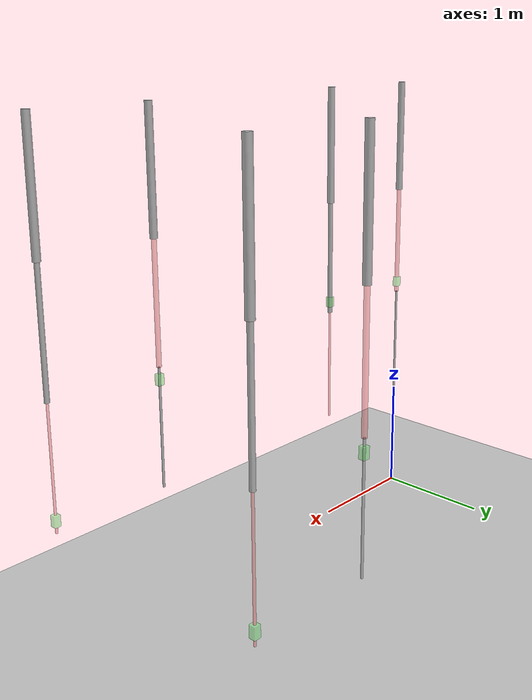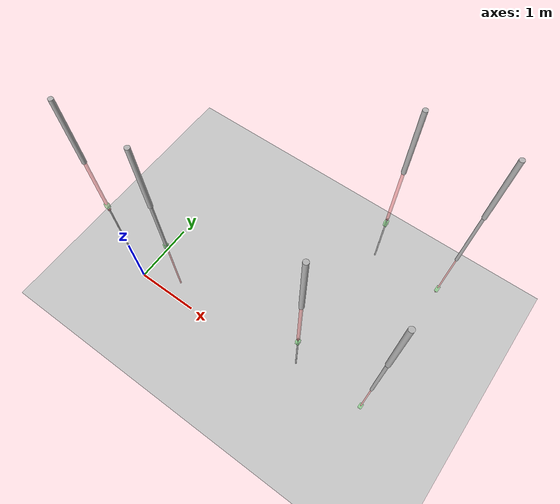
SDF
<?xml version="1.0" ?>
<sdf version="1.5">
  <world name="default">
    <!-- A global light source -->
    <include>
      <uri>model://sun</uri>
    </include>
    <!-- A ground plane -->
    <include>
      <uri>model://ground_plane</uri>
    </include>
    <physics type="ode">
      <gravity>0.000000 0.000000 0.00000</gravity>
      <max_step_size>0.000100</max_step_size>
      <ode>
        <solver>
          <type>quick</type>
          <iters>200</iters>
          <precon_iters>0</precon_iters>
          <sor>1.000000</sor>
        </solver>
        <constraints>
          <cfm>0.000000</cfm>
          <erp>1.000000</erp>
          <contact_max_correcting_vel>0.000000</contact_max_correcting_vel>
          <contact_surface_layer>0.000000</contact_surface_layer>
        </constraints>
      </ode>
      <real_time_update_rate>0.000000</real_time_update_rate>
    </physics>

    <model name='model_l2p_pin2'>
      <pose frame=''>0 0 0 0 -0 0</pose>
      <link name='link_1'>
        <pose frame=''>0 0 2.0 0 -0 0</pose>
        <inertial>
          <pose frame=''>0 0 -0.5 0 -0 0</pose>
          <mass>1</mass>
          <inertia>
            <ixx>0.00123</ixx>
            <ixy>0</ixy>
            <ixz>0</ixz>
            <iyy>0.00123</iyy>
            <iyz>0</iyz>
            <izz>0.00123</izz>
          </inertia>
        </inertial>
        <visual name='link_1_visual'>
          <pose frame=''>0 0 -0.5 0 -0 0</pose>
          <geometry>
            <cylinder>
              <length>1.0</length>
              <radius>0.01</radius>
            </cylinder>
          </geometry>
        </visual>
      </link>
      <link name='link_2'>
        <pose frame=''>0 0 2.0 0 -0 0</pose>
        <inertial>
          <pose frame=''>0 0 0.5 0 -0 0</pose>
          <mass>1</mass>
          <inertia>
            <ixx>0.00123</ixx>
            <ixy>0</ixy>
            <ixz>0</ixz>
            <iyy>0.00123</iyy>
            <iyz>0</iyz>
            <izz>0.00123</izz>
          </inertia>
        </inertial>
        <visual name='link_2_visual'>
          <pose frame=''>0 0 0.5 0 -0 0</pose>
          <geometry>
            <cylinder>
              <length>1.0</length>
              <radius>0.02</radius>
            </cylinder>
          </geometry>
          <material>
            <ambient>1.0 0.5 0.5 1</ambient>
            <diffuse>1.0 0.5 0.5 0.5</diffuse>
            <specular>1.0 0.5 0.5 0.8</specular>
          </material>
        </visual>
        <visual name='link_2w_visual'>
          <pose frame=''>0 0 0.1 0 -0 0</pose>
          <geometry>
            <box>
              <size>0.05 0.05 0.09</size>
            </box>
          </geometry>
          <material>
            <ambient>0.5 1.0 0.5 1</ambient>
            <diffuse>0.5 1.0 0.5 0.5</diffuse>
            <specular>0.5 1.0 0.5 0.8</specular>
          </material>
        </visual>
      </link>
      <joint name='joint_12' type='revolute'>
        <parent>link_2</parent>
        <child>link_1</child>
        <axis>
          <xyz>1 0 0</xyz>
          <limit>
            <lower>-1e+16</lower>
            <upper>1e+16</upper>
          </limit>
          <dynamics>
            <spring_reference>0</spring_reference>
            <spring_stiffness>0</spring_stiffness>
            <damping>1</damping>
          </dynamics>
          <use_parent_model_frame>1</use_parent_model_frame>
        </axis>
      </joint>
      <link name='link_3'>
        <pose frame=''>0 0 3.0 0 -0 0</pose>
        <inertial>
          <pose frame=''>0 0 0.5 0 -0 0</pose>
          <mass>1</mass>
          <inertia>
            <ixx>0.00123</ixx>
            <ixy>0</ixy>
            <ixz>0</ixz>
            <iyy>0.00123</iyy>
            <iyz>0</iyz>
            <izz>0.00123</izz>
          </inertia>
        </inertial>
        <visual name='link_3_visual'>
          <pose frame=''>0 0 0.5 0 -0 0</pose>
          <geometry>
            <cylinder>
              <length>1.0</length>
              <radius>0.03</radius>
            </cylinder>
          </geometry>
        </visual>
      </link>
      <joint name='joint_23' type='revolute'>
        <parent>link_2</parent>
        <child>link_3</child>
        <axis>
          <xyz>1 0 0</xyz>
          <limit>
            <lower>-1e+16</lower>
            <upper>1e+16</upper>
          </limit>
          <dynamics>
            <spring_reference>0</spring_reference>
            <spring_stiffness>0</spring_stiffness>
            <damping>1</damping>
          </dynamics>
          <use_parent_model_frame>1</use_parent_model_frame>
        </axis>
      </joint>
      <joint name='gearbox_123' type='gearbox'>
        <parent>link_1</parent>
        <child>link_3</child>
        <gearbox_reference_body>link_2</gearbox_reference_body>
        <gearbox_ratio>1.0</gearbox_ratio>
      </joint>
      <joint name='joint_w2' type='revolute'>
        <parent>world</parent>
        <child>link_2</child>
        <axis>
          <xyz>1 0 0</xyz>
          <limit>
            <lower>-1e+16</lower>
            <upper>1e+16</upper>
          </limit>
          <dynamics>
            <damping>1</damping>
          </dynamics>
        </axis>
      </joint>
    </model>

    <model name='model_l1p_pin2'>
      <pose frame=''>1 0 0 0 -0 0</pose>
      <link name='link_1'>
        <pose frame=''>0 0 1.0 0 -0 0</pose>
        <inertial>
          <pose frame=''>0 0 0.5 0 -0 0</pose>
          <mass>1</mass>
          <inertia>
            <ixx>0.00123</ixx>
            <ixy>0</ixy>
            <ixz>0</ixz>
            <iyy>0.00123</iyy>
            <iyz>0</iyz>
            <izz>0.00123</izz>
          </inertia>
        </inertial>
        <visual name='link_1_visual'>
          <pose frame=''>0 0 0.5 0 -0 0</pose>
          <geometry>
            <cylinder>
              <length>1.0</length>
              <radius>0.01</radius>
            </cylinder>
          </geometry>
          <material>
            <ambient>1.0 0.5 0.5 1</ambient>
            <diffuse>1.0 0.5 0.5 0.5</diffuse>
            <specular>1.0 0.5 0.5 0.8</specular>
          </material>
        </visual>
      </link>
      <link name='link_2'>
        <pose frame=''>0 0 2.0 0 -0 0</pose>
        <inertial>
          <pose frame=''>0 0 0.5 0 -0 0</pose>
          <mass>1</mass>
          <inertia>
            <ixx>0.00123</ixx>
            <ixy>0</ixy>
            <ixz>0</ixz>
            <iyy>0.00123</iyy>
            <iyz>0</iyz>
            <izz>0.00123</izz>
          </inertia>
        </inertial>
        <visual name='link_2_visual'>
          <pose frame=''>0 0 0.5 0 -0 0</pose>
          <geometry>
            <cylinder>
              <length>1.0</length>
              <radius>0.02</radius>
            </cylinder>
          </geometry>
        </visual>
        <visual name='link_2w_visual'>
          <pose frame=''>0 0 0.1 0 -0 0</pose>
          <geometry>
            <box>
              <size>0.05 0.05 0.09</size>
            </box>
          </geometry>
          <material>
            <ambient>0.5 1.0 0.5 1</ambient>
            <diffuse>0.5 1.0 0.5 0.5</diffuse>
            <specular>0.5 1.0 0.5 0.8</specular>
          </material>
        </visual>
      </link>
      <joint name='joint_12' type='revolute'>
        <parent>link_1</parent>
        <child>link_2</child>
        <axis>
          <xyz>1 0 0</xyz>
          <limit>
            <lower>-1e+16</lower>
            <upper>1e+16</upper>
          </limit>
          <dynamics>
            <spring_reference>0</spring_reference>
            <spring_stiffness>0</spring_stiffness>
            <damping>1</damping>
          </dynamics>
          <use_parent_model_frame>1</use_parent_model_frame>
        </axis>
      </joint>
      <link name='link_3'>
        <pose frame=''>0 0 3.0 0 -0 0</pose>
        <inertial>
          <pose frame=''>0 0 0.5 0 -0 0</pose>
          <mass>1</mass>
          <inertia>
            <ixx>0.00123</ixx>
            <ixy>0</ixy>
            <ixz>0</ixz>
            <iyy>0.00123</iyy>
            <iyz>0</iyz>
            <izz>0.00123</izz>
          </inertia>
        </inertial>
        <visual name='link_3_visual'>
          <pose frame=''>0 0 0.5 0 -0 0</pose>
          <geometry>
            <cylinder>
              <length>1.0</length>
              <radius>0.03</radius>
            </cylinder>
          </geometry>
        </visual>
      </link>
      <joint name='joint_23' type='revolute'>
        <parent>link_2</parent>
        <child>link_3</child>
        <axis>
          <xyz>1 0 0</xyz>
          <limit>
            <lower>-1e+16</lower>
            <upper>1e+16</upper>
          </limit>
          <dynamics>
            <spring_reference>0</spring_reference>
            <spring_stiffness>0</spring_stiffness>
            <damping>1</damping>
          </dynamics>
          <use_parent_model_frame>1</use_parent_model_frame>
        </axis>
      </joint>
      <joint name='gearbox_123' type='gearbox'>
        <parent>link_1</parent>
        <child>link_3</child>
        <gearbox_reference_body>link_2</gearbox_reference_body>
        <gearbox_ratio>1.0</gearbox_ratio>
      </joint>
      <joint name='joint_w2' type='revolute'>
        <parent>world</parent>
        <child>link_2</child>
        <axis>
          <xyz>0 0 1</xyz>
          <limit>
            <lower>-1e+16</lower>
            <upper>1e+16</upper>
          </limit>
          <dynamics>
            <damping>1</damping>
          </dynamics>
        </axis>
      </joint>
    </model>

    <model name='model_l2p_pin1'>
      <pose frame=''>3 0 0 0 -0 0</pose>
      <link name='link_1'>
        <pose frame=''>0 0 2.0 0 -0 0</pose>
        <inertial>
          <pose frame=''>0 0 -0.5 0 -0 0</pose>
          <mass>1</mass>
          <inertia>
            <ixx>0.00123</ixx>
            <ixy>0</ixy>
            <ixz>0</ixz>
            <iyy>0.00123</iyy>
            <iyz>0</iyz>
            <izz>0.00123</izz>
          </inertia>
        </inertial>
        <visual name='link_1_visual'>
          <pose frame=''>0 0 -0.5 0 -0 0</pose>
          <geometry>
            <cylinder>
              <length>1.0</length>
              <radius>0.01</radius>
            </cylinder>
          </geometry>
        </visual>
        <visual name='link_1w_visual'>
          <pose frame=''>0 0 -0.1 0 -0 0</pose>
          <geometry>
            <box>
              <size>0.05 0.05 0.09</size>
            </box>
          </geometry>
          <material>
            <ambient>0.5 1.0 0.5 1</ambient>
            <diffuse>0.5 1.0 0.5 0.5</diffuse>
            <specular>0.5 1.0 0.5 0.8</specular>
          </material>
        </visual>
      </link>
      <link name='link_2'>
        <pose frame=''>0 0 2.0 0 -0 0</pose>
        <inertial>
          <pose frame=''>0 0 0.5 0 -0 0</pose>
          <mass>1</mass>
          <inertia>
            <ixx>0.00123</ixx>
            <ixy>0</ixy>
            <ixz>0</ixz>
            <iyy>0.00123</iyy>
            <iyz>0</iyz>
            <izz>0.00123</izz>
          </inertia>
        </inertial>
        <visual name='link_2_visual'>
          <pose frame=''>0 0 0.5 0 -0 0</pose>
          <geometry>
            <cylinder>
              <length>1.0</length>
              <radius>0.02</radius>
            </cylinder>
          </geometry>
          <material>
            <ambient>1.0 0.5 0.5 1</ambient>
            <diffuse>1.0 0.5 0.5 0.5</diffuse>
            <specular>1.0 0.5 0.5 0.8</specular>
          </material>
        </visual>
      </link>
      <joint name='joint_12' type='revolute'>
        <parent>link_2</parent>
        <child>link_1</child>
        <axis>
          <xyz>1 0 0</xyz>
          <limit>
            <lower>-1e+16</lower>
            <upper>1e+16</upper>
          </limit>
          <dynamics>
            <spring_reference>0</spring_reference>
            <spring_stiffness>0</spring_stiffness>
            <damping>1</damping>
          </dynamics>
          <use_parent_model_frame>1</use_parent_model_frame>
        </axis>
      </joint>
      <link name='link_3'>
        <pose frame=''>0 0 3.0 0 -0 0</pose>
        <inertial>
          <pose frame=''>0 0 0.5 0 -0 0</pose>
          <mass>1</mass>
          <inertia>
            <ixx>0.00123</ixx>
            <ixy>0</ixy>
            <ixz>0</ixz>
            <iyy>0.00123</iyy>
            <iyz>0</iyz>
            <izz>0.00123</izz>
          </inertia>
        </inertial>
        <visual name='link_3_visual'>
          <pose frame=''>0 0 0.5 0 -0 0</pose>
          <geometry>
            <cylinder>
              <length>1.0</length>
              <radius>0.03</radius>
            </cylinder>
          </geometry>
        </visual>
      </link>
      <joint name='joint_23' type='revolute'>
        <parent>link_2</parent>
        <child>link_3</child>
        <axis>
          <xyz>1 0 0</xyz>
          <limit>
            <lower>-1e+16</lower>
            <upper>1e+16</upper>
          </limit>
          <dynamics>
            <spring_reference>0</spring_reference>
            <spring_stiffness>0</spring_stiffness>
            <damping>1</damping>
          </dynamics>
          <use_parent_model_frame>1</use_parent_model_frame>
        </axis>
      </joint>
      <joint name='gearbox_123' type='gearbox'>
        <parent>link_1</parent>
        <child>link_3</child>
        <gearbox_reference_body>link_2</gearbox_reference_body>
        <gearbox_ratio>1.0</gearbox_ratio>
      </joint>
      <joint name='joint_w2' type='revolute'>
        <parent>world</parent>
        <child>link_1</child>
        <axis>
          <xyz>1 0 0</xyz>
          <limit>
            <lower>-0.1</lower>
            <upper>0.1</upper>
          </limit>
          <dynamics>
            <damping>1</damping>
          </dynamics>
        </axis>
        <physics>
          <ode>
            <limit>
              <cfm>0.0000</cfm>
              <erp>0.5</erp>
            </limit>
          </ode>
        </physics>
      </joint>
    </model>

    <model name='model_l1p_pin1'>
      <pose frame=''>4 0 0 0 -0 0</pose>
      <link name='link_1'>
        <pose frame=''>0 0 1.0 0 -0 0</pose>
        <inertial>
          <pose frame=''>0 0 0.5 0 -0 0</pose>
          <mass>1</mass>
          <inertia>
            <ixx>0.00123</ixx>
            <ixy>0</ixy>
            <ixz>0</ixz>
            <iyy>0.00123</iyy>
            <iyz>0</iyz>
            <izz>0.00123</izz>
          </inertia>
        </inertial>
        <visual name='link_1_visual'>
          <pose frame=''>0 0 0.5 0 -0 0</pose>
          <geometry>
            <cylinder>
              <length>1.0</length>
              <radius>0.01</radius>
            </cylinder>
          </geometry>
          <material>
            <ambient>1.0 0.5 0.5 1</ambient>
            <diffuse>1.0 0.5 0.5 0.5</diffuse>
            <specular>1.0 0.5 0.5 0.8</specular>
          </material>
        </visual>
        <visual name='link_1w_visual'>
          <pose frame=''>0 0 0.1 0 -0 0</pose>
          <geometry>
            <box>
              <size>0.05 0.05 0.09</size>
            </box>
          </geometry>
          <material>
            <ambient>0.5 1.0 0.5 1</ambient>
            <diffuse>0.5 1.0 0.5 0.5</diffuse>
            <specular>0.5 1.0 0.5 0.8</specular>
          </material>
        </visual>
      </link>
      <link name='link_2'>
        <pose frame=''>0 0 2.0 0 -0 0</pose>
        <inertial>
          <pose frame=''>0 0 0.5 0 -0 0</pose>
          <mass>1</mass>
          <inertia>
            <ixx>0.00123</ixx>
            <ixy>0</ixy>
            <ixz>0</ixz>
            <iyy>0.00123</iyy>
            <iyz>0</iyz>
            <izz>0.00123</izz>
          </inertia>
        </inertial>
        <visual name='link_2_visual'>
          <pose frame=''>0 0 0.5 0 -0 0</pose>
          <geometry>
            <cylinder>
              <length>1.0</length>
              <radius>0.02</radius>
            </cylinder>
          </geometry>
        </visual>
      </link>
      <joint name='joint_12' type='revolute'>
        <parent>link_1</parent>
        <child>link_2</child>
        <axis>
          <xyz>1 0 0</xyz>
          <limit>
            <lower>-1e+16</lower>
            <upper>1e+16</upper>
          </limit>
          <dynamics>
            <spring_reference>0</spring_reference>
            <spring_stiffness>0</spring_stiffness>
            <damping>1</damping>
          </dynamics>
          <use_parent_model_frame>1</use_parent_model_frame>
        </axis>
      </joint>
      <link name='link_3'>
        <pose frame=''>0 0 3.0 0 -0 0</pose>
        <inertial>
          <pose frame=''>0 0 0.5 0 -0 0</pose>
          <mass>1</mass>
          <inertia>
            <ixx>0.00123</ixx>
            <ixy>0</ixy>
            <ixz>0</ixz>
            <iyy>0.00123</iyy>
            <iyz>0</iyz>
            <izz>0.00123</izz>
          </inertia>
        </inertial>
        <visual name='link_3_visual'>
          <pose frame=''>0 0 0.5 0 -0 0</pose>
          <geometry>
            <cylinder>
              <length>1.0</length>
              <radius>0.03</radius>
            </cylinder>
          </geometry>
        </visual>
      </link>
      <joint name='joint_23' type='revolute'>
        <parent>link_2</parent>
        <child>link_3</child>
        <axis>
          <xyz>1 0 0</xyz>
          <limit>
            <lower>-1e+16</lower>
            <upper>1e+16</upper>
          </limit>
          <dynamics>
            <spring_reference>0</spring_reference>
            <spring_stiffness>0</spring_stiffness>
            <damping>1</damping>
          </dynamics>
          <use_parent_model_frame>1</use_parent_model_frame>
        </axis>
      </joint>
      <joint name='gearbox_123' type='gearbox'>
        <parent>link_1</parent>
        <child>link_3</child>
        <gearbox_reference_body>link_2</gearbox_reference_body>
        <gearbox_ratio>1.0</gearbox_ratio>
      </joint>
    </model>

    <model name='model_l2p_pin1_neg'>
      <pose frame=''>3 2 0 0 -0 0</pose>
      <link name='link_1'>
        <pose frame=''>0 0 2.0 0 -0 0</pose>
        <inertial>
          <pose frame=''>0 0 -0.5 0 -0 0</pose>
          <mass>1</mass>
          <inertia>
            <ixx>0.00123</ixx>
            <ixy>0</ixy>
            <ixz>0</ixz>
            <iyy>0.00123</iyy>
            <iyz>0</iyz>
            <izz>0.00123</izz>
          </inertia>
        </inertial>
        <visual name='link_1_visual'>
          <pose frame=''>0 0 -0.5 0 -0 0</pose>
          <geometry>
            <cylinder>
              <length>1.0</length>
              <radius>0.01</radius>
            </cylinder>
          </geometry>
        </visual>
        <visual name='link_1w_visual'>
          <pose frame=''>0 0 -0.1 0 -0 0</pose>
          <geometry>
            <box>
              <size>0.05 0.05 0.09</size>
            </box>
          </geometry>
          <material>
            <ambient>0.5 1.0 0.5 1</ambient>
            <diffuse>0.5 1.0 0.5 0.5</diffuse>
            <specular>0.5 1.0 0.5 0.8</specular>
          </material>
        </visual>
      </link>
      <link name='link_2'>
        <pose frame=''>0 0 2.0 0 -0 0</pose>
        <inertial>
          <pose frame=''>0 0 0.5 0 -0 0</pose>
          <mass>1</mass>
          <inertia>
            <ixx>0.00123</ixx>
            <ixy>0</ixy>
            <ixz>0</ixz>
            <iyy>0.00123</iyy>
            <iyz>0</iyz>
            <izz>0.00123</izz>
          </inertia>
        </inertial>
        <visual name='link_2_visual'>
          <pose frame=''>0 0 0.5 0 -0 0</pose>
          <geometry>
            <cylinder>
              <length>1.0</length>
              <radius>0.02</radius>
            </cylinder>
          </geometry>
          <material>
            <ambient>1.0 0.5 0.5 1</ambient>
            <diffuse>1.0 0.5 0.5 0.5</diffuse>
            <specular>1.0 0.5 0.5 0.8</specular>
          </material>
        </visual>
      </link>
      <joint name='joint_12' type='revolute'>
        <parent>link_2</parent>
        <child>link_1</child>
        <axis>
          <xyz>1 0 0</xyz>
          <limit>
            <lower>-1e+16</lower>
            <upper>1e+16</upper>
          </limit>
          <dynamics>
            <spring_reference>0</spring_reference>
            <spring_stiffness>0</spring_stiffness>
            <damping>1</damping>
          </dynamics>
          <use_parent_model_frame>1</use_parent_model_frame>
        </axis>
      </joint>
      <link name='link_3'>
        <pose frame=''>0 0 3.0 0 -0 0</pose>
        <inertial>
          <pose frame=''>0 0 0.5 0 -0 0</pose>
          <mass>1</mass>
          <inertia>
            <ixx>0.00123</ixx>
            <ixy>0</ixy>
            <ixz>0</ixz>
            <iyy>0.00123</iyy>
            <iyz>0</iyz>
            <izz>0.00123</izz>
          </inertia>
        </inertial>
        <visual name='link_3_visual'>
          <pose frame=''>0 0 0.5 0 -0 0</pose>
          <geometry>
            <cylinder>
              <length>1.0</length>
              <radius>0.03</radius>
            </cylinder>
          </geometry>
        </visual>
      </link>
      <joint name='joint_23' type='revolute'>
        <parent>link_2</parent>
        <child>link_3</child>
        <axis>
          <xyz>1 0 0</xyz>
          <limit>
            <lower>-1e+16</lower>
            <upper>1e+16</upper>
          </limit>
          <dynamics>
            <spring_reference>0</spring_reference>
            <spring_stiffness>0</spring_stiffness>
            <damping>1</damping>
          </dynamics>
          <use_parent_model_frame>1</use_parent_model_frame>
        </axis>
      </joint>
      <joint name='gearbox_123' type='gearbox'>
        <parent>link_1</parent>
        <child>link_3</child>
        <gearbox_reference_body>link_2</gearbox_reference_body>
        <gearbox_ratio>-1.0</gearbox_ratio>
      </joint>
      <joint name='joint_w2' type='revolute'>
        <parent>world</parent>
        <child>link_1</child>
        <axis>
          <xyz>0 0 1</xyz>
          <limit>
            <lower>-1e+16</lower>
            <upper>1e+16</upper>
          </limit>
          <dynamics>
            <damping>1</damping>
          </dynamics>
        </axis>
      </joint>
    </model>

    <model name='model_l1p_pin1_neg'>
      <pose frame=''>4 2 0 0 -0 0</pose>
      <link name='link_1'>
        <pose frame=''>0 0 1.0 0 -0 0</pose>
        <inertial>
          <pose frame=''>0 0 0.5 0 -0 0</pose>
          <mass>1</mass>
          <inertia>
            <ixx>0.00123</ixx>
            <ixy>0</ixy>
            <ixz>0</ixz>
            <iyy>0.00123</iyy>
            <iyz>0</iyz>
            <izz>0.00123</izz>
          </inertia>
        </inertial>
        <visual name='link_1_visual'>
          <pose frame=''>0 0 0.5 0 -0 0</pose>
          <geometry>
            <cylinder>
              <length>1.0</length>
              <radius>0.01</radius>
            </cylinder>
          </geometry>
          <material>
            <ambient>1.0 0.5 0.5 1</ambient>
            <diffuse>1.0 0.5 0.5 0.5</diffuse>
            <specular>1.0 0.5 0.5 0.8</specular>
          </material>
        </visual>
        <visual name='link_1w_visual'>
          <pose frame=''>0 0 0.1 0 -0 0</pose>
          <geometry>
            <box>
              <size>0.05 0.05 0.09</size>
            </box>
          </geometry>
          <material>
            <ambient>0.5 1.0 0.5 1</ambient>
            <diffuse>0.5 1.0 0.5 0.5</diffuse>
            <specular>0.5 1.0 0.5 0.8</specular>
          </material>
        </visual>
      </link>
      <link name='link_2'>
        <pose frame=''>0 0 2.0 0 -0 0</pose>
        <inertial>
          <pose frame=''>0 0 0.5 0 -0 0</pose>
          <mass>1</mass>
          <inertia>
            <ixx>0.00123</ixx>
            <ixy>0</ixy>
            <ixz>0</ixz>
            <iyy>0.00123</iyy>
            <iyz>0</iyz>
            <izz>0.00123</izz>
          </inertia>
        </inertial>
        <visual name='link_2_visual'>
          <pose frame=''>0 0 0.5 0 -0 0</pose>
          <geometry>
            <cylinder>
              <length>1.0</length>
              <radius>0.02</radius>
            </cylinder>
          </geometry>
        </visual>
      </link>
      <joint name='joint_12' type='revolute'>
        <parent>link_1</parent>
        <child>link_2</child>
        <axis>
          <xyz>1 0 0</xyz>
          <limit>
            <lower>-1e+16</lower>
            <upper>1e+16</upper>
          </limit>
          <dynamics>
            <spring_reference>0</spring_reference>
            <spring_stiffness>0</spring_stiffness>
            <damping>1</damping>
          </dynamics>
          <use_parent_model_frame>1</use_parent_model_frame>
        </axis>
      </joint>
      <link name='link_3'>
        <pose frame=''>0 0 3.0 0 -0 0</pose>
        <inertial>
          <pose frame=''>0 0 0.5 0 -0 0</pose>
          <mass>1</mass>
          <inertia>
            <ixx>0.00123</ixx>
            <ixy>0</ixy>
            <ixz>0</ixz>
            <iyy>0.00123</iyy>
            <iyz>0</iyz>
            <izz>0.00123</izz>
          </inertia>
        </inertial>
        <visual name='link_3_visual'>
          <pose frame=''>0 0 0.5 0 -0 0</pose>
          <geometry>
            <cylinder>
              <length>1.0</length>
              <radius>0.03</radius>
            </cylinder>
          </geometry>
        </visual>
      </link>
      <joint name='joint_23' type='revolute'>
        <parent>link_2</parent>
        <child>link_3</child>
        <axis>
          <xyz>1 0 0</xyz>
          <limit>
            <lower>-1e+16</lower>
            <upper>1e+16</upper>
          </limit>
          <dynamics>
            <spring_reference>0</spring_reference>
            <spring_stiffness>0</spring_stiffness>
            <damping>1</damping>
          </dynamics>
          <use_parent_model_frame>1</use_parent_model_frame>
        </axis>
      </joint>
      <joint name='gearbox_123' type='gearbox'>
        <parent>link_1</parent>
        <child>link_3</child>
        <gearbox_reference_body>link_2</gearbox_reference_body>
        <gearbox_ratio>-1.0</gearbox_ratio>
      </joint>
      <joint name='joint_w2' type='revolute'>
        <parent>world</parent>
        <child>link_1</child>
        <axis>
          <xyz>0 0 1</xyz>
          <limit>
            <lower>-1e+16</lower>
            <upper>1e+16</upper>
          </limit>
          <dynamics>
            <damping>1</damping>
          </dynamics>
        </axis>
      </joint>
    </model>
  </world>
</sdf>
